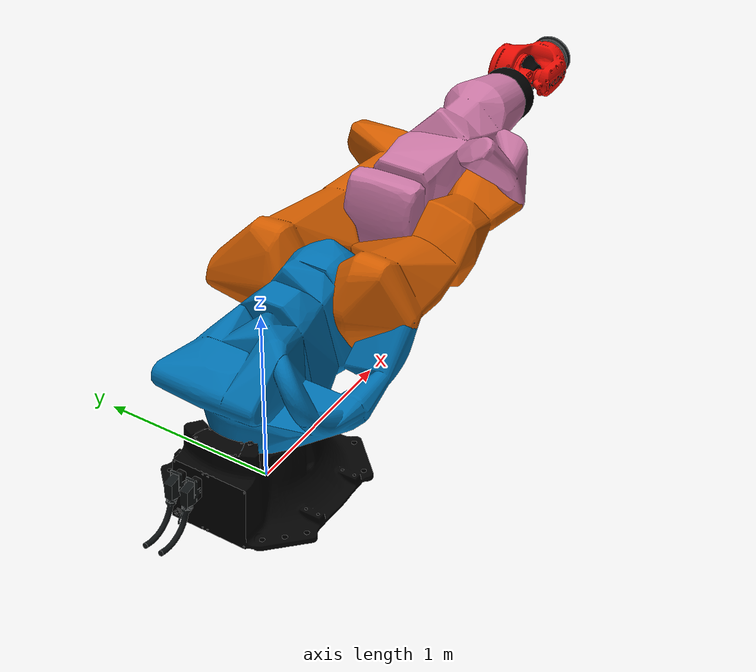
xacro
<?xml version="1.0"?>
<robot xmlns:xacro="http://www.ros.org/wiki/xacro" name="kr800_r2800_2">
  <!-- Import macro files  -->
  <xacro:include filename="$(find kuka_fortec_support)/urdf/kr800_r2800_2_macro.xacro"/>
  <xacro:include filename="$(find kuka_fortec_support)/urdf/kr_fortec_ros2_control_macro.xacro"/>
  <!-- Read additional arguments  -->
  <xacro:arg name="driver_version" default="rsi_only"/>
  <xacro:arg name="mode" default="hardware"/>
  <xacro:arg name="gpio_config" default=""/>
  <xacro:arg name="roundtrip_time" default="0"/>
  <xacro:arg name="client_ip" default="0.0.0.0"/>
  <xacro:arg name="client_port" default="59152"/>
  <xacro:arg name="mxa_client_port" default="1337"/>
  <xacro:arg name="controller_ip" default="0.0.0.0"/>
  <xacro:arg name="verify_robot_model" default="true"/>
  <xacro:arg name="prefix" default=""/>
  <xacro:arg name="x" default="0"/>
  <xacro:arg name="y" default="0"/>
  <xacro:arg name="z" default="0"/>
  <xacro:arg name="roll" default="0"/>
  <xacro:arg name="pitch" default="0"/>
  <xacro:arg name="yaw" default="0"/>
  <xacro:arg name="rsi_xml_config_file" default=""/>
  <xacro:kuka_fortec_ros2_control name="$(arg prefix)kr800_r2800_2" driver_version="$(arg driver_version)" client_ip="$(arg client_ip)" client_port="$(arg client_port)" mxa_client_port="$(arg mxa_client_port)" controller_ip="$(arg controller_ip)" prefix="$(arg prefix)" mode="$(arg mode)" gpio_config="$(arg gpio_config)" roundtrip_time="$(arg roundtrip_time)" verify_robot_model="$(arg verify_robot_model)" rsi_xml_config_file="$(arg rsi_xml_config_file)">
    <ext_axes_ros2_control_joints/>
  </xacro:kuka_fortec_ros2_control>
  <!-- world link -->
  <link name="world"/>
  <!-- robot links, joints -->
  <xacro:kuka_kr800_r2800_2_robot prefix="$(arg prefix)" package_name="kuka_fortec_support"/>
  <!-- default world - base_link joint -->
  <joint name="$(arg prefix)world-base_link" type="fixed">
    <parent link="world"/>
    <child link="$(arg prefix)base_link"/>
    <origin xyz="$(arg x) $(arg y) $(arg z)" rpy="$(arg roll) $(arg pitch) $(arg yaw)"/>
  </joint>
</robot>

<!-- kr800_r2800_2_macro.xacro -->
<robot xmlns:xacro="http://www.ros.org/wiki/xacro" name="kr800_r2800_2">
  <xacro:macro name="kuka_kr800_r2800_2_robot" params="prefix package_name">
    <link name="${prefix}base"/>
    <link name="${prefix}base_link">
      <collision>
        <geometry>
          <mesh filename="package://${package_name}/meshes/kr800_r2800_2/collision/base_link.stl"/>
        </geometry>
        <origin rpy="0.0 -0.0 0.0" xyz="0.0 0.0 0.0"/>
      </collision>
      <inertial>
        <inertia ixx="35.410866659826" ixy="0.0" ixz="0.0" iyy="34.5547429413375" iyz="0.0" izz="38.9749152422865"/>
        <mass value="4.3839E2"/>
        <origin rpy="-0.26345077947988915 -0.011417952338033863 -1.5831162104095253" xyz="-0.0219634111179543 2.66337735806023E-4 0.290824658865394"/>
      </inertial>
      <visual>
        <geometry>
          <mesh filename="package://${package_name}/meshes/kr800_r2800_2/visual/base_link.dae"/>
        </geometry>
        <origin rpy="0.0 -0.0 0.0" xyz="0.0 0.0 0.0"/>
      </visual>
    </link>
    <link name="${prefix}flange"/>
    <link name="${prefix}link_1">
      <collision>
        <geometry>
          <mesh filename="package://${package_name}/meshes/kr800_r2800_2/collision/link_1.stl"/>
        </geometry>
        <origin rpy="-3.141592653589793 0.0 -0.0" xyz="0.0 -5.634599922876973e-17 0.4601"/>
      </collision>
      <inertial>
        <inertia ixx="68.8871727481765" ixy="0.0" ixz="0.0" iyy="31.9479323362134" iyz="0.0" izz="84.5563373850467"/>
        <mass value="5.5748E2"/>
        <origin rpy="-1.8734135274052497 -1.508489219626719 0.30671025878674923" xyz="0.0812269789050728 0.00860667378201908 -0.29662668257157204"/>
      </inertial>
      <visual>
        <geometry>
          <mesh filename="package://${package_name}/meshes/kr800_r2800_2/visual/link_1.dae"/>
        </geometry>
        <origin rpy="-3.141592653589793 0.0 -0.0" xyz="0.0 -5.634599922876973e-17 0.4601"/>
      </visual>
    </link>
    <link name="${prefix}link_2">
      <collision>
        <geometry>
          <mesh filename="package://${package_name}/meshes/kr800_r2800_2/collision/link_2.stl"/>
        </geometry>
        <origin rpy="1.5707963267948968 -0.0 1.5707963267948966" xyz="-0.86 -0.49999999999999994 1.0900581159210591e-16"/>
      </collision>
      <inertial>
        <inertia ixx="234.038661760488" ixy="0.0" ixz="0.0" iyy="44.6811101653664" iyz="0.0" izz="265.140294805591"/>
        <mass value="7.13754E2"/>
        <origin rpy="-1.4053359784557018 -1.5504227359415552 2.978073109454718" xyz="0.5451547047302011 -0.00787886711668166 0.0357928494691448"/>
      </inertial>
      <visual>
        <geometry>
          <mesh filename="package://${package_name}/meshes/kr800_r2800_2/visual/link_2.dae"/>
        </geometry>
        <origin rpy="1.5707963267948968 -0.0 1.5707963267948966" xyz="-0.86 -0.49999999999999994 1.0900581159210591e-16"/>
      </visual>
    </link>
    <link name="${prefix}link_3">
      <collision>
        <geometry>
          <mesh filename="package://${package_name}/meshes/kr800_r2800_2/collision/link_3.stl"/>
        </geometry>
        <origin rpy="1.5707963267948968 -0.0 -0.0" xyz="-0.5000000000000001 2.11 1.0900581159210584e-16"/>
      </collision>
      <inertial>
        <inertia ixx="94.5877907037078" ixy="0.0" ixz="0.0" iyy="12.7784294917473" iyz="0.0" izz="98.5803684136603"/>
        <mass value="5.00646E2"/>
        <origin rpy="-0.004167314080299332 0.054979395482442496 1.501543927865115" xyz="-0.235255945414249 -0.0933218454757558 -0.00967148578650326"/>
      </inertial>
      <visual>
        <geometry>
          <mesh filename="package://${package_name}/meshes/kr800_r2800_2/visual/link_3.dae"/>
        </geometry>
        <origin rpy="1.5707963267948968 -0.0 -0.0" xyz="-0.5000000000000001 2.11 1.0900581159210584e-16"/>
      </visual>
    </link>
    <link name="${prefix}link_4">
      <collision>
        <geometry>
          <mesh filename="package://${package_name}/meshes/kr800_r2800_2/collision/link_4.stl"/>
        </geometry>
        <origin rpy="1.8369701987210297e-16 1.5707963267948966 0.0" xyz="-2.29 3.479833879777203e-17 1.2118999999999998"/>
      </collision>
      <inertial>
        <inertia ixx="0.693678008600892" ixy="0.0" ixz="0.0" iyy="2.78506557610754" iyz="0.0" izz="2.86251005408283"/>
        <mass value="9.7442E1"/>
        <origin rpy="1.570932272091058 -1.2743253802401948 -1.570766714386286" xyz="-5.43869794830743E-7 0.042293334372276704 -0.18193497897866"/>
      </inertial>
      <visual>
        <geometry>
          <mesh filename="package://${package_name}/meshes/kr800_r2800_2/visual/link_4.dae"/>
        </geometry>
        <origin rpy="1.8369701987210297e-16 1.5707963267948966 0.0" xyz="-2.29 3.479833879777203e-17 1.2118999999999998"/>
      </visual>
    </link>
    <link name="${prefix}link_5">
      <collision>
        <geometry>
          <mesh filename="package://${package_name}/meshes/kr800_r2800_2/collision/link_5.stl"/>
        </geometry>
        <origin rpy="1.5707963267948968 -3.749399456654644e-33 -6.123233995736766e-17" xyz="-1.5344999999999998 2.29 -0.1251"/>
      </collision>
      <inertial>
        <inertia ixx="1.10203832546012" ixy="0.0" ixz="0.0" iyy="0.783938692397306" iyz="0.0" izz="1.20828474699799"/>
        <mass value="5.36088E1"/>
        <origin rpy="-1.564227860202788 -0.8175710147649964 -0.011709797778757799" xyz="0.06813413576091991 -4.9894728477414005E-5 -0.0893390051226664"/>
      </inertial>
      <visual>
        <geometry>
          <mesh filename="package://${package_name}/meshes/kr800_r2800_2/visual/link_5.dae"/>
        </geometry>
        <origin rpy="1.5707963267948968 -3.749399456654644e-33 -6.123233995736766e-17" xyz="-1.5344999999999998 2.29 -0.1251"/>
      </visual>
    </link>
    <link name="${prefix}link_6">
      <collision>
        <geometry>
          <mesh filename="package://${package_name}/meshes/kr800_r2800_2/collision/link_6.stl"/>
        </geometry>
        <origin rpy="1.2246467991473532e-16 1.5707963267948966 0.0" xyz="-2.29 -1.0542371970459992e-16 1.7495999999999998"/>
      </collision>
      <inertial>
        <inertia ixx="0.154627253223927" ixy="0.0" ixz="0.0" iyy="0.154759872890913" iyz="0.0" izz="0.18961138268388"/>
        <mass value="3.202E1"/>
        <origin rpy="0.00204716513409031 7.476904024861182E-5 -1.5692303732484225" xyz="-4.86570893191755E-5 -2.5301686445971304E-6 -0.0203013397876327"/>
      </inertial>
      <visual>
        <geometry>
          <mesh filename="package://${package_name}/meshes/kr800_r2800_2/visual/link_6.dae"/>
        </geometry>
        <origin rpy="1.2246467991473532e-16 1.5707963267948966 0.0" xyz="-2.29 -1.0542371970459992e-16 1.7495999999999998"/>
      </visual>
    </link>
    <link name="${prefix}tool0"/>
    <joint name="${prefix}base_link-base" type="fixed">
      <child link="${prefix}base"/>
      <parent link="${prefix}base_link"/>
    </joint>
    <joint name="${prefix}joint_1" type="revolute">
      <axis xyz="0.0 0.0 1.0"/>
      <child link="${prefix}link_1"/>
      <limit effort="1.5E4" lower="-3.2288591125E0" upper="3.2288591125E0" velocity="1.39626340159546E0"/>
      <origin rpy="3.141592653589793 -0.0 0.0" xyz="0.0 0.0 0.4601"/>
      <parent link="${prefix}base_link"/>
    </joint>
    <joint name="${prefix}joint_2" type="revolute">
      <axis xyz="0.0 0.0 1.0"/>
      <child link="${prefix}link_2"/>
      <limit effort="1.788E4" lower="-2.268928025E0" upper="3.4906585E-1" velocity="1.0471975511966E0"/>
      <origin rpy="1.5707963267948966 -0.0 0.0" xyz="0.5 0.0 -0.3999"/>
      <parent link="${prefix}link_1"/>
    </joint>
    <joint name="${prefix}joint_3" type="revolute">
      <axis xyz="0.0 0.0 1.0"/>
      <child link="${prefix}link_3"/>
      <limit effort="1.5009464928487507E4" lower="-1.74532925E0" upper="2.8797932625E0" velocity="1.0471975511966E0"/>
      <origin rpy="0.0 -0.0 0.0" xyz="1.25 0.0 0.0"/>
      <parent link="${prefix}link_2"/>
    </joint>
    <joint name="${prefix}joint_4" type="revolute">
      <axis xyz="0.0 0.0 1.0"/>
      <child link="${prefix}link_4"/>
      <limit effort="5.7543796954414393E3" lower="-6.108652375E0" upper="6.108652375E0" velocity="1.5707963267949E0"/>
      <origin rpy="1.5707963267948966 -0.0 -1.5707963267948966" xyz="0.7119 -0.18 0.0"/>
      <parent link="${prefix}link_3"/>
    </joint>
    <joint name="${prefix}joint_5" type="revolute">
      <axis xyz="0.0 0.0 1.0"/>
      <child link="${prefix}link_5"/>
      <limit effort="5.72425377530146E3" lower="-2.0943951E0" upper="2.0943951E0" velocity="1.39626340159546E0"/>
      <origin rpy="0.0 1.5707963267948966 1.5707963267948966" xyz="0.0 0.1251 -0.32260000000000005"/>
      <parent link="${prefix}link_4"/>
    </joint>
    <joint name="${prefix}joint_6" type="revolute">
      <axis xyz="0.0 0.0 1.0"/>
      <child link="${prefix}link_6"/>
      <limit effort="2.8108245442479288E3" lower="-6.108652375E0" upper="6.108652375E0" velocity="2.26892802759263E0"/>
      <origin rpy="1.5707963267948966 -0.0 -1.5707963267948966" xyz="0.21509999999999999 0.0 -0.1251"/>
      <parent link="${prefix}link_5"/>
    </joint>
    <joint name="${prefix}link6-flange" type="fixed">
      <child link="${prefix}flange"/>
      <origin rpy="0.0 1.5707963267948966 0.0" xyz="0.0 0.0 -0.08990000000000001"/>
      <parent link="${prefix}link_6"/>
    </joint>
    <joint name="${prefix}link6-tool0" type="fixed">
      <child link="${prefix}tool0"/>
      <origin rpy="3.141592653589793 1.2246467991473532E-16 3.141592653589793" xyz="0.0 0.0 -0.08990000000000001"/>
      <parent link="${prefix}link_6"/>
    </joint>
  </xacro:macro>
</robot>
